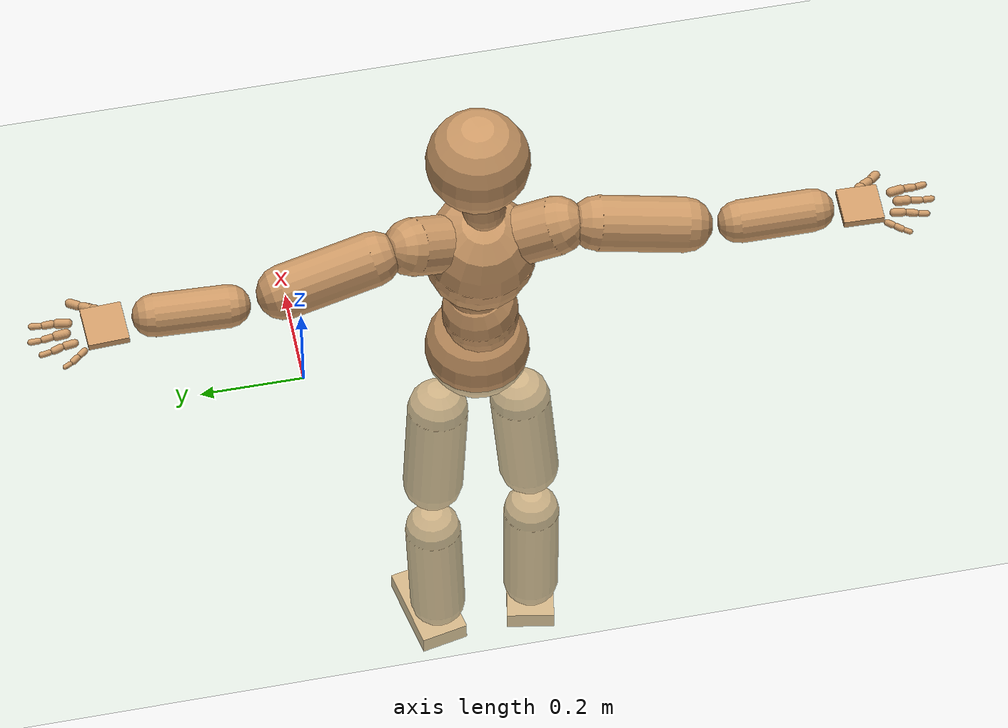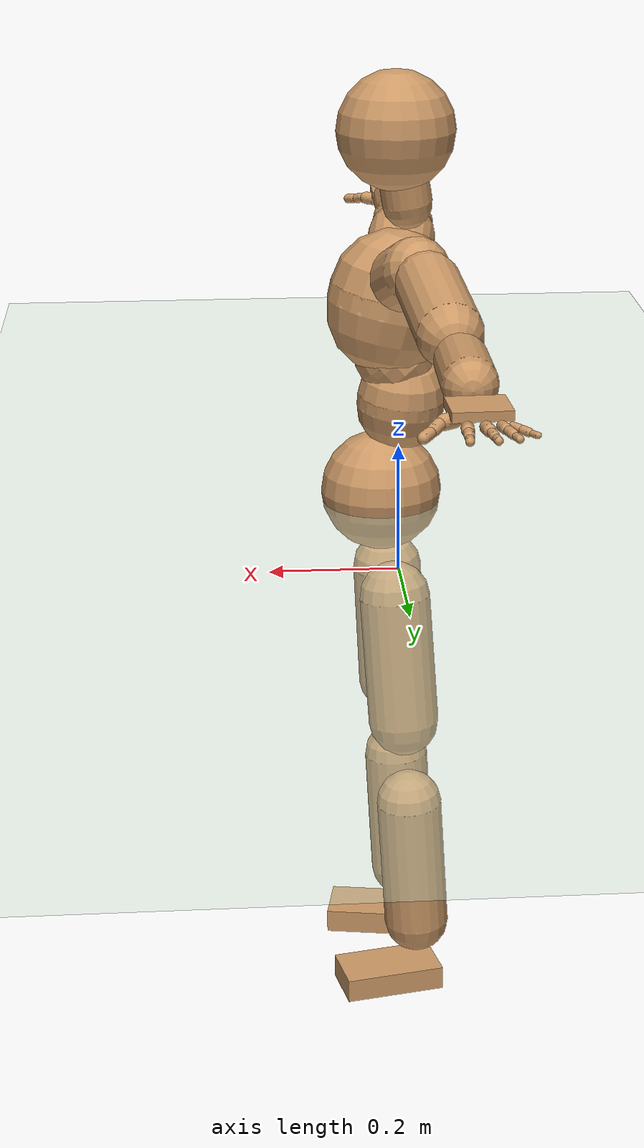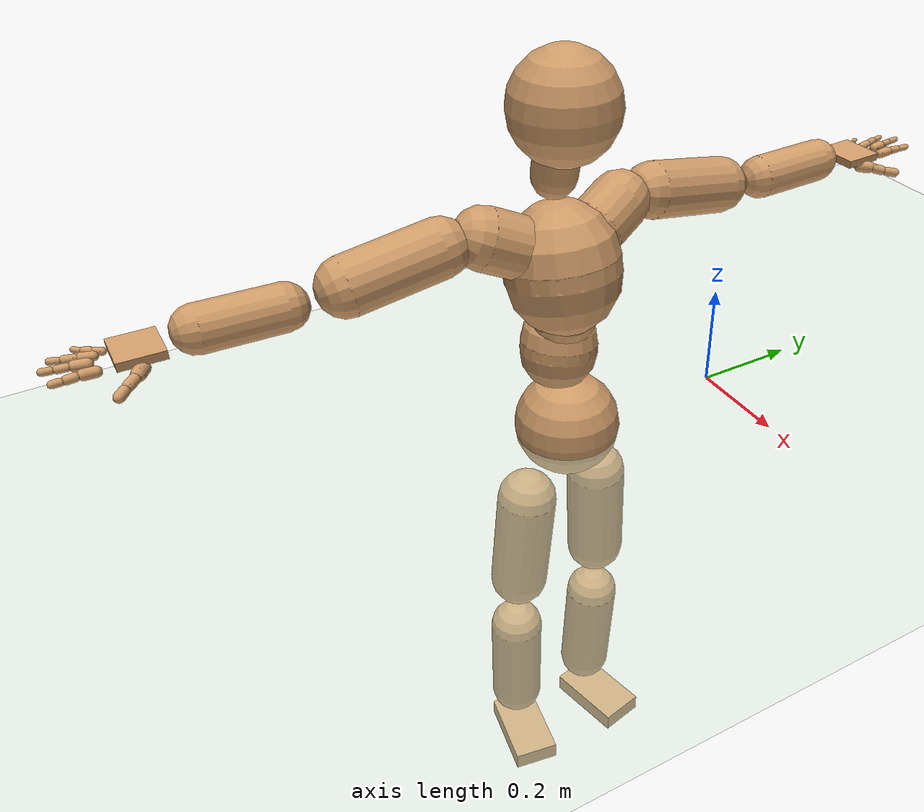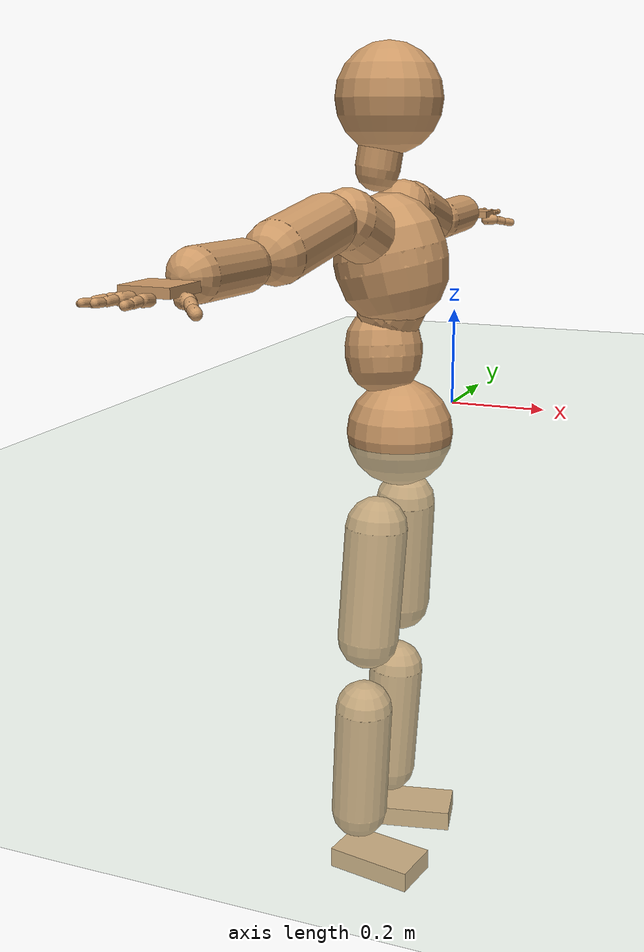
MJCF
<mujoco model="humanoid">
  <compiler coordinate="local" angle="radian"/>
  <default>
    <joint damping="0.0" armature="0.01" stiffness="0.0" limited="true"/>
    <geom conaffinity="1" condim="3" contype="7" margin="0.001" rgba="0.8 0.6 .4 1"/>
  </default>
  <asset>
    <texture type="skybox" builtin="gradient" rgb1=".4 .5 .6" rgb2="0 0 0" width="100" height="100"/>
    <texture builtin="flat" height="1278" mark="cross" markrgb="1 1 1" name="texgeom" random="0.01" rgb1="0.8 0.6 0.4" rgb2="0.8 0.6 0.4" type="cube" width="127"/>
    <texture builtin="checker" height="100" name="texplane" rgb1="0 0 0" rgb2="0.8 0.8 0.8" type="2d" width="100"/>
    <material name="MatPlane" reflectance="0.5" shininess="1" specular="1" texrepeat="60 60" texture="texplane"/>
    <material name="geom" texture="texgeom" texuniform="true"/>
  </asset>
  <worldbody>
    <light cutoff="100" diffuse="1 1 1" dir="-0 0 -1.3" directional="true" exponent="1" pos="0 0 1.3" specular=".1 .1 .1"/>
    <geom conaffinity="1" condim="3" name="floor" pos="0 0 0" rgba="0.8 0.9 0.8 1" size="100 100 .2" type="plane" material="MatPlane"/>
    <body name="Pelvis" pos="0.0005 -0.3383 0.0156">
      <freejoint name="Pelvis"/>
      <geom type="sphere" contype="1" conaffinity="1" density="500" size="0.1014" pos="0.0000 0.0000 0.0000" name="Pelvis"/>
      <body name="L_Hip" pos="-0.0118 0.0765 -0.0883">
        <joint name="L_Hip_x" type="hinge" pos="0 0 0" axis="1 0 0" stiffness="800" damping="80" armature="0.02" range="-180.0000 180.0000"/>
        <joint name="L_Hip_y" type="hinge" pos="0 0 0" axis="0 1 0" stiffness="800" damping="80" armature="0.02" range="-180.0000 180.0000"/>
        <joint name="L_Hip_z" type="hinge" pos="0 0 0" axis="0 0 1" stiffness="800" damping="80" armature="0.02" range="-180.0000 180.0000"/>
        <geom type="capsule" contype="1" conaffinity="1" density="500" fromto="-0.0048 0.0048 -0.0747 -0.0193 0.0190 -0.2989" size="0.0593" name="L_Hip"/>
        <body name="L_Knee" pos="-0.0242 0.0238 -0.3737">
          <joint name="L_Knee_x" type="hinge" pos="0 0 0" axis="1 0 0" stiffness="800" damping="80" armature="0.02" range="-180.0000 180.0000"/>
          <joint name="L_Knee_y" type="hinge" pos="0 0 0" axis="0 1 0" stiffness="800" damping="80" armature="0.02" range="-180.0000 180.0000"/>
          <joint name="L_Knee_z" type="hinge" pos="0 0 0" axis="0 0 1" stiffness="800" damping="80" armature="0.02" range="-180.0000 180.0000"/>
          <geom type="capsule" contype="1" conaffinity="1" density="500" fromto="-0.0048 -0.0018 -0.0780 -0.0191 -0.0071 -0.3118" size="0.0557" name="L_Knee"/>
          <body name="L_Ankle" pos="-0.0239 -0.0089 -0.3898">
            <joint name="L_Ankle_x" type="hinge" pos="0 0 0" axis="1 0 0" stiffness="800" damping="80" armature="0.02" range="-180.0000 180.0000"/>
            <joint name="L_Ankle_y" type="hinge" pos="0 0 0" axis="0 1 0" stiffness="800" damping="80" armature="0.02" range="-180.0000 180.0000"/>
            <joint name="L_Ankle_z" type="hinge" pos="0 0 0" axis="0 0 1" stiffness="800" damping="80" armature="0.02" range="-180.0000 180.0000"/>
            <geom type="box" contype="1" conaffinity="1" density="500" pos="0.0546 0.0112 -0.0215" size="0.086 0.0476 0.0203" quat="0.9949 0.0000 0.0000 0.1012" name="L_Ankle"/>
            <body name="L_Toe" pos="0.1093 0.0225 -0.0431">
              <joint name="L_Toe_x" type="hinge" pos="0 0 0" axis="1 0 0" stiffness="500" damping="50" armature="0.02" range="-180.0000 180.0000"/>
              <joint name="L_Toe_y" type="hinge" pos="0 0 0" axis="0 1 0" stiffness="500" damping="50" armature="0.02" range="-180.0000 180.0000"/>
              <joint name="L_Toe_z" type="hinge" pos="0 0 0" axis="0 0 1" stiffness="500" damping="50" armature="0.02" range="-180.0000 180.0000"/>
              <geom type="box" contype="1" conaffinity="1" density="500" pos="0.0000 0.0000 0.0216" size="0.0009 0.0023 0.001" quat="0.9942 0.0000 0.0000 0.1080" name="L_Toe"/>
            </body>
          </body>
        </body>
      </body>
      <body name="R_Hip" pos="-0.013 -0.0756 -0.0947">
        <joint name="R_Hip_x" type="hinge" pos="0 0 0" axis="1 0 0" stiffness="800" damping="80" armature="0.02" range="-180.0000 180.0000"/>
        <joint name="R_Hip_y" type="hinge" pos="0 0 0" axis="0 1 0" stiffness="800" damping="80" armature="0.02" range="-180.0000 180.0000"/>
        <joint name="R_Hip_z" type="hinge" pos="0 0 0" axis="0 0 1" stiffness="800" damping="80" armature="0.02" range="-180.0000 180.0000"/>
        <geom type="capsule" contype="1" conaffinity="1" density="500" fromto="-0.0036 -0.0055 -0.0739 -0.0145 -0.0222 -0.2957" size="0.0592" name="R_Hip"/>
        <body name="R_Knee" pos="-0.0181 -0.0277 -0.3696">
          <joint name="R_Knee_x" type="hinge" pos="0 0 0" axis="1 0 0" stiffness="800" damping="80" armature="0.02" range="-180.0000 180.0000"/>
          <joint name="R_Knee_y" type="hinge" pos="0 0 0" axis="0 1 0" stiffness="800" damping="80" armature="0.02" range="-180.0000 180.0000"/>
          <joint name="R_Knee_z" type="hinge" pos="0 0 0" axis="0 0 1" stiffness="800" damping="80" armature="0.02" range="-180.0000 180.0000"/>
          <geom type="capsule" contype="1" conaffinity="1" density="500" fromto="-0.0040 0.0008 -0.0762 -0.0162 0.0032 -0.3048" size="0.0557" name="R_Knee"/>
          <body name="R_Ankle" pos="-0.0202 0.0041 -0.381">
            <joint name="R_Ankle_x" type="hinge" pos="0 0 0" axis="1 0 0" stiffness="800" damping="80" armature="0.02" range="-180.0000 180.0000"/>
            <joint name="R_Ankle_y" type="hinge" pos="0 0 0" axis="0 1 0" stiffness="800" damping="80" armature="0.02" range="-180.0000 180.0000"/>
            <joint name="R_Ankle_z" type="hinge" pos="0 0 0" axis="0 0 1" stiffness="800" damping="80" armature="0.02" range="-180.0000 180.0000"/>
            <geom type="box" contype="1" conaffinity="1" density="500" pos="0.0516 -0.0091 -0.0233" size="0.086 0.0476 0.0203" quat="0.9962 0.0000 0.0000 -0.0871" name="R_Ankle"/>
            <body name="R_Toe" pos="0.1032 -0.0182 -0.0465">
              <joint name="R_Toe_x" type="hinge" pos="0 0 0" axis="1 0 0" stiffness="500" damping="50" armature="0.02" range="-180.0000 180.0000"/>
              <joint name="R_Toe_y" type="hinge" pos="0 0 0" axis="0 1 0" stiffness="500" damping="50" armature="0.02" range="-180.0000 180.0000"/>
              <joint name="R_Toe_z" type="hinge" pos="0 0 0" axis="0 0 1" stiffness="500" damping="50" armature="0.02" range="-180.0000 180.0000"/>
              <geom type="box" contype="1" conaffinity="1" density="500" pos="0.0000 0.0000 0.0233" size="0.0009 0.0023 0.001" quat="0.9971 0.0000 0.0000 -0.0762" name="R_Toe"/>
            </body>
          </body>
        </body>
      </body>
      <body name="Torso" pos="-0.0287 -0.0058 0.1019">
        <joint name="Torso_x" type="hinge" pos="0 0 0" axis="1 0 0" stiffness="1000" damping="100" armature="0.02" range="-180.0000 180.0000"/>
        <joint name="Torso_y" type="hinge" pos="0 0 0" axis="0 1 0" stiffness="1000" damping="100" armature="0.02" range="-180.0000 180.0000"/>
        <joint name="Torso_z" type="hinge" pos="0 0 0" axis="0 0 1" stiffness="1000" damping="100" armature="0.02" range="-180.0000 180.0000"/>
        <geom type="capsule" contype="1" conaffinity="1" density="500" fromto="-0.0052 0.0075 0.0641 -0.0034 0.0050 0.0427" size="0.0731" name="Torso"/>
        <body name="Spine" pos="-0.0086 0.0125 0.1068">
          <joint name="Spine_x" type="hinge" pos="0 0 0" axis="1 0 0" stiffness="1000" damping="100" armature="0.02" range="-180.0000 180.0000"/>
          <joint name="Spine_y" type="hinge" pos="0 0 0" axis="0 1 0" stiffness="1000" damping="100" armature="0.02" range="-180.0000 180.0000"/>
          <joint name="Spine_z" type="hinge" pos="0 0 0" axis="0 0 1" stiffness="1000" damping="100" armature="0.02" range="-180.0000 180.0000"/>
          <geom type="capsule" contype="1" conaffinity="1" density="500" fromto="0.0211 -0.0044 0.0257 0.0140 -0.0029 0.0171" size="0.062" name="Spine"/>
          <body name="Chest" pos="0.0351 -0.0073 0.0428">
            <joint name="Chest_x" type="hinge" pos="0 0 0" axis="1 0 0" stiffness="1000" damping="100" armature="0.02" range="-180.0000 180.0000"/>
            <joint name="Chest_y" type="hinge" pos="0 0 0" axis="0 1 0" stiffness="1000" damping="100" armature="0.02" range="-180.0000 180.0000"/>
            <joint name="Chest_z" type="hinge" pos="0 0 0" axis="0 0 1" stiffness="1000" damping="100" armature="0.02" range="-180.0000 180.0000"/>
            <geom type="capsule" contype="1" conaffinity="1" density="500" fromto="-0.0190 -0.0018 0.0875 -0.0127 -0.0012 0.0584" size="0.1061" name="Chest"/>
            <body name="Neck" pos="-0.0457 -0.0061 0.2042">
              <joint name="Neck_x" type="hinge" pos="0 0 0" axis="1 0 0" stiffness="500" damping="50" armature="0.02" range="-180.0000 180.0000"/>
              <joint name="Neck_y" type="hinge" pos="0 0 0" axis="0 1 0" stiffness="500" damping="50" armature="0.02" range="-180.0000 180.0000"/>
              <joint name="Neck_z" type="hinge" pos="0 0 0" axis="0 0 1" stiffness="500" damping="50" armature="0.02" range="-180.0000 180.0000"/>
              <geom type="capsule" contype="1" conaffinity="1" density="500" fromto="0.0048 0.0018 0.0301 0.0192 0.0072 0.1206" size="0.0411" name="Neck"/>
              <body name="Head" pos="0.024 0.009 0.1507">
                <joint name="Head_x" type="hinge" pos="0 0 0" axis="1 0 0" stiffness="500" damping="50" armature="0.02" range="-180.0000 180.0000"/>
                <joint name="Head_y" type="hinge" pos="0 0 0" axis="0 1 0" stiffness="500" damping="50" armature="0.02" range="-180.0000 180.0000"/>
                <joint name="Head_z" type="hinge" pos="0 0 0" axis="0 0 1" stiffness="500" damping="50" armature="0.02" range="-180.0000 180.0000"/>
                <geom type="sphere" contype="1" conaffinity="1" density="500" size="0.0974" pos="0.0000 0.0000 0.0000" name="Head"/>
              </body>
            </body>
            <body name="L_Thorax" pos="-0.0212 0.0553 0.119">
              <joint name="L_Thorax_x" type="hinge" pos="0 0 0" axis="1 0 0" stiffness="500" damping="50" armature="0.02" range="-180.0000 180.0000"/>
              <joint name="L_Thorax_y" type="hinge" pos="0 0 0" axis="0 1 0" stiffness="500" damping="50" armature="0.02" range="-180.0000 180.0000"/>
              <joint name="L_Thorax_z" type="hinge" pos="0 0 0" axis="0 0 1" stiffness="500" damping="50" armature="0.02" range="-180.0000 180.0000"/>
              <geom type="capsule" contype="1" conaffinity="1" density="500" fromto="-0.0055 0.0191 0.0091 -0.0219 0.0764 0.0362" size="0.0551" name="L_Thorax"/>
              <body name="L_Shoulder" pos="-0.0273 0.0955 0.0453">
                <joint name="L_Shoulder_x" type="hinge" pos="0 0 0" axis="1 0 0" stiffness="500" damping="50" armature="0.02" range="-180.0000 180.0000"/>
                <joint name="L_Shoulder_y" type="hinge" pos="0 0 0" axis="0 1 0" stiffness="500" damping="50" armature="0.02" range="-180.0000 180.0000"/>
                <joint name="L_Shoulder_z" type="hinge" pos="0 0 0" axis="0 0 1" stiffness="500" damping="50" armature="0.02" range="-180.0000 180.0000"/>
                <geom type="capsule" contype="1" conaffinity="1" density="500" fromto="-0.0057 0.0570 -0.0116 -0.0227 0.2280 -0.0463" size="0.0521" name="L_Shoulder"/>
                <body name="L_Elbow" pos="-0.0283 0.285 -0.0579">
                  <joint name="L_Elbow_x" type="hinge" pos="0 0 0" axis="1 0 0" stiffness="500" damping="50" armature="0.02" range="-720.0000 720.0000"/>
                  <joint name="L_Elbow_y" type="hinge" pos="0 0 0" axis="0 1 0" stiffness="500" damping="50" armature="0.02" range="-720.0000 720.0000"/>
                  <joint name="L_Elbow_z" type="hinge" pos="0 0 0" axis="0 0 1" stiffness="500" damping="50" armature="0.02" range="-720.0000 720.0000"/>
                  <geom type="capsule" contype="1" conaffinity="1" density="500" fromto="0.0009 0.0469 0.0016 0.0037 0.1877 0.0064" size="0.0405" name="L_Elbow"/>
                  <body name="L_Wrist" pos="0.0047 0.2347 0.008">
                    <joint name="L_Wrist_x" type="hinge" pos="0 0 0" axis="1 0 0" stiffness="300" damping="30" armature="0.02" range="-180.0000 180.0000"/>
                    <joint name="L_Wrist_y" type="hinge" pos="0 0 0" axis="0 1 0" stiffness="300" damping="30" armature="0.02" range="-180.0000 180.0000"/>
                    <joint name="L_Wrist_z" type="hinge" pos="0 0 0" axis="0 0 1" stiffness="300" damping="30" armature="0.02" range="-180.0000 180.0000"/>
                    <geom type="box" contype="1" conaffinity="1" density="500" pos="-0.0021 0.0444 -0.0086" size="0.0384 0.0425 0.0073" quat="0.7232 0.0000 0.0000 -0.6906" name="L_Wrist"/>
                    <body name="L_Index1" pos="0.0203 0.1041 -0.0147">
                      <joint name="L_Index1_x" type="hinge" pos="0 0 0" axis="1 0 0" stiffness="100" damping="10" armature="0.02" range="-180.0000 180.0000"/>
                      <joint name="L_Index1_y" type="hinge" pos="0 0 0" axis="0 1 0" stiffness="100" damping="10" armature="0.02" range="-180.0000 180.0000"/>
                      <joint name="L_Index1_z" type="hinge" pos="0 0 0" axis="0 0 1" stiffness="100" damping="10" armature="0.02" range="-180.0000 180.0000"/>
                      <geom type="capsule" contype="1" conaffinity="1" density="500" fromto="0.0005 0.0063 0.0006 0.0020 0.0251 0.0024" size="0.009" name="L_Index1"/>
                      <body name="L_Index2" pos="0.0025 0.0314 0.003">
                        <joint name="L_Index2_x" type="hinge" pos="0 0 0" axis="1 0 0" stiffness="100" damping="10" armature="0.02" range="-180.0000 180.0000"/>
                        <joint name="L_Index2_y" type="hinge" pos="0 0 0" axis="0 1 0" stiffness="100" damping="10" armature="0.02" range="-180.0000 180.0000"/>
                        <joint name="L_Index2_z" type="hinge" pos="0 0 0" axis="0 0 1" stiffness="100" damping="10" armature="0.02" range="-180.0000 180.0000"/>
                        <geom type="capsule" contype="1" conaffinity="1" density="500" fromto="0.0001 0.0044 -0.0003 0.0002 0.0177 -0.0010" size="0.0074" name="L_Index2"/>
                        <body name="L_Index3" pos="0.0003 0.0222 -0.0013">
                          <joint name="L_Index3_x" type="hinge" pos="0 0 0" axis="1 0 0" stiffness="100" damping="10" armature="0.02" range="-180.0000 180.0000"/>
                          <joint name="L_Index3_y" type="hinge" pos="0 0 0" axis="0 1 0" stiffness="100" damping="10" armature="0.02" range="-180.0000 180.0000"/>
                          <joint name="L_Index3_z" type="hinge" pos="0 0 0" axis="0 0 1" stiffness="100" damping="10" armature="0.02" range="-180.0000 180.0000"/>
                          <geom type="capsule" contype="1" conaffinity="1" density="500" fromto="0.0005 0.0048 0.0001 0.0018 0.0193 0.0006" size="0.0062" name="L_Index3"/>
                        </body>
                      </body>
                    </body>
                    <body name="L_Middle1" pos="-0.0026 0.1111 -0.0123">
                      <joint name="L_Middle1_x" type="hinge" pos="0 0 0" axis="1 0 0" stiffness="100" damping="10" armature="0.02" range="-180.0000 180.0000"/>
                      <joint name="L_Middle1_y" type="hinge" pos="0 0 0" axis="0 1 0" stiffness="100" damping="10" armature="0.02" range="-180.0000 180.0000"/>
                      <joint name="L_Middle1_z" type="hinge" pos="0 0 0" axis="0 0 1" stiffness="100" damping="10" armature="0.02" range="-180.0000 180.0000"/>
                      <geom type="capsule" contype="1" conaffinity="1" density="500" fromto="-0.0008 0.0059 0.0003 -0.0032 0.0238 0.0013" size="0.0092" name="L_Middle1"/>
                      <body name="L_Middle2" pos="-0.004 0.0297 0.0016">
                        <joint name="L_Middle2_x" type="hinge" pos="0 0 0" axis="1 0 0" stiffness="100" damping="10" armature="0.02" range="-180.0000 180.0000"/>
                        <joint name="L_Middle2_y" type="hinge" pos="0 0 0" axis="0 1 0" stiffness="100" damping="10" armature="0.02" range="-180.0000 180.0000"/>
                        <joint name="L_Middle2_z" type="hinge" pos="0 0 0" axis="0 0 1" stiffness="100" damping="10" armature="0.02" range="-180.0000 180.0000"/>
                        <geom type="capsule" contype="1" conaffinity="1" density="500" fromto="-0.0008 0.0046 -0.0001 -0.0030 0.0184 -0.0005" size="0.0068" name="L_Middle2"/>
                        <body name="L_Middle3" pos="-0.0038 0.023 -0.0006">
                          <joint name="L_Middle3_x" type="hinge" pos="0 0 0" axis="1 0 0" stiffness="100" damping="10" armature="0.02" range="-180.0000 180.0000"/>
                          <joint name="L_Middle3_y" type="hinge" pos="0 0 0" axis="0 1 0" stiffness="100" damping="10" armature="0.02" range="-180.0000 180.0000"/>
                          <joint name="L_Middle3_z" type="hinge" pos="0 0 0" axis="0 0 1" stiffness="100" damping="10" armature="0.02" range="-180.0000 180.0000"/>
                          <geom type="capsule" contype="1" conaffinity="1" density="500" fromto="-0.0004 0.0050 0.0003 -0.0014 0.0200 0.0011" size="0.0059" name="L_Middle3"/>
                        </body>
                      </body>
                    </body>
                    <body name="L_Pinky1" pos="-0.0403 0.0861 -0.0206">
                      <joint name="L_Pinky1_x" type="hinge" pos="0 0 0" axis="1 0 0" stiffness="100" damping="10" armature="0.02" range="-180.0000 180.0000"/>
                      <joint name="L_Pinky1_y" type="hinge" pos="0 0 0" axis="0 1 0" stiffness="100" damping="10" armature="0.02" range="-180.0000 180.0000"/>
                      <joint name="L_Pinky1_z" type="hinge" pos="0 0 0" axis="0 0 1" stiffness="100" damping="10" armature="0.02" range="-180.0000 180.0000"/>
                      <geom type="capsule" contype="1" conaffinity="1" density="500" fromto="-0.0024 0.0029 -0.0001 -0.0094 0.0118 -0.0004" size="0.0065" name="L_Pinky1"/>
                      <body name="L_Pinky2" pos="-0.0118 0.0147 -0.0005">
                        <joint name="L_Pinky2_x" type="hinge" pos="0 0 0" axis="1 0 0" stiffness="100" damping="10" armature="0.02" range="-180.0000 180.0000"/>
                        <joint name="L_Pinky2_y" type="hinge" pos="0 0 0" axis="0 1 0" stiffness="100" damping="10" armature="0.02" range="-180.0000 180.0000"/>
                        <joint name="L_Pinky2_z" type="hinge" pos="0 0 0" axis="0 0 1" stiffness="100" damping="10" armature="0.02" range="-180.0000 180.0000"/>
                        <geom type="capsule" contype="1" conaffinity="1" density="500" fromto="-0.0023 0.0030 -0.0002 -0.0092 0.0119 -0.0008" size="0.0063" name="L_Pinky2"/>
                        <body name="L_Pinky3" pos="-0.0114 0.0148 -0.001">
                          <joint name="L_Pinky3_x" type="hinge" pos="0 0 0" axis="1 0 0" stiffness="100" damping="10" armature="0.02" range="-180.0000 180.0000"/>
                          <joint name="L_Pinky3_y" type="hinge" pos="0 0 0" axis="0 1 0" stiffness="100" damping="10" armature="0.02" range="-180.0000 180.0000"/>
                          <joint name="L_Pinky3_z" type="hinge" pos="0 0 0" axis="0 0 1" stiffness="100" damping="10" armature="0.02" range="-180.0000 180.0000"/>
                          <geom type="capsule" contype="1" conaffinity="1" density="500" fromto="-0.0019 0.0034 0.0002 -0.0076 0.0135 0.0008" size="0.0048" name="L_Pinky3"/>
                        </body>
                      </body>
                    </body>
                    <body name="L_Ring1" pos="-0.025 0.0993 -0.0152">
                      <joint name="L_Ring1_x" type="hinge" pos="0 0 0" axis="1 0 0" stiffness="100" damping="10" armature="0.02" range="-180.0000 180.0000"/>
                      <joint name="L_Ring1_y" type="hinge" pos="0 0 0" axis="0 1 0" stiffness="100" damping="10" armature="0.02" range="-180.0000 180.0000"/>
                      <joint name="L_Ring1_z" type="hinge" pos="0 0 0" axis="0 0 1" stiffness="100" damping="10" armature="0.02" range="-180.0000 180.0000"/>
                      <geom type="capsule" contype="1" conaffinity="1" density="500" fromto="-0.0011 0.0054 0.0004 -0.0043 0.0218 0.0015" size="0.0079" name="L_Ring1"/>
                      <body name="L_Ring2" pos="-0.0054 0.0272 0.0019">
                        <joint name="L_Ring2_x" type="hinge" pos="0 0 0" axis="1 0 0" stiffness="100" damping="10" armature="0.02" range="-180.0000 180.0000"/>
                        <joint name="L_Ring2_y" type="hinge" pos="0 0 0" axis="0 1 0" stiffness="100" damping="10" armature="0.02" range="-180.0000 180.0000"/>
                        <joint name="L_Ring2_z" type="hinge" pos="0 0 0" axis="0 0 1" stiffness="100" damping="10" armature="0.02" range="-180.0000 180.0000"/>
                        <geom type="capsule" contype="1" conaffinity="1" density="500" fromto="-0.0014 0.0044 -0.0002 -0.0056 0.0177 -0.0008" size="0.0072" name="L_Ring2"/>
                        <body name="L_Ring3" pos="-0.0071 0.0222 -0.001">
                          <joint name="L_Ring3_x" type="hinge" pos="0 0 0" axis="1 0 0" stiffness="100" damping="10" armature="0.02" range="-180.0000 180.0000"/>
                          <joint name="L_Ring3_y" type="hinge" pos="0 0 0" axis="0 1 0" stiffness="100" damping="10" armature="0.02" range="-180.0000 180.0000"/>
                          <joint name="L_Ring3_z" type="hinge" pos="0 0 0" axis="0 0 1" stiffness="100" damping="10" armature="0.02" range="-180.0000 180.0000"/>
                          <geom type="capsule" contype="1" conaffinity="1" density="500" fromto="-0.0010 0.0048 0.0002 -0.0040 0.0193 0.0008" size="0.0056" name="L_Ring3"/>
                        </body>
                      </body>
                    </body>
                    <body name="L_Thumb1" pos="0.0271 0.0438 -0.0227">
                      <joint name="L_Thumb1_x" type="hinge" pos="0 0 0" axis="1 0 0" stiffness="100" damping="10" armature="0.02" range="-180.0000 180.0000"/>
                      <joint name="L_Thumb1_y" type="hinge" pos="0 0 0" axis="0 1 0" stiffness="100" damping="10" armature="0.02" range="-180.0000 180.0000"/>
                      <joint name="L_Thumb1_z" type="hinge" pos="0 0 0" axis="0 0 1" stiffness="100" damping="10" armature="0.02" range="-180.0000 180.0000"/>
                      <geom type="capsule" contype="1" conaffinity="1" density="500" fromto="0.0047 0.0034 0.0001 0.0189 0.0137 0.0005" size="0.0117" name="L_Thumb1"/>
                      <body name="L_Thumb2" pos="0.0236 0.0171 0.0006">
                        <joint name="L_Thumb2_x" type="hinge" pos="0 0 0" axis="1 0 0" stiffness="100" damping="10" armature="0.02" range="-180.0000 180.0000"/>
                        <joint name="L_Thumb2_y" type="hinge" pos="0 0 0" axis="0 1 0" stiffness="100" damping="10" armature="0.02" range="-180.0000 180.0000"/>
                        <joint name="L_Thumb2_z" type="hinge" pos="0 0 0" axis="0 0 1" stiffness="100" damping="10" armature="0.02" range="-180.0000 180.0000"/>
                        <geom type="capsule" contype="1" conaffinity="1" density="500" fromto="0.0029 0.0040 -0.0012 0.0114 0.0161 -0.0047" size="0.0092" name="L_Thumb2"/>
                        <body name="L_Thumb3" pos="0.0143 0.0201 -0.0059">
                          <joint name="L_Thumb3_x" type="hinge" pos="0 0 0" axis="1 0 0" stiffness="100" damping="10" armature="0.02" range="-180.0000 180.0000"/>
                          <joint name="L_Thumb3_y" type="hinge" pos="0 0 0" axis="0 1 0" stiffness="100" damping="10" armature="0.02" range="-180.0000 180.0000"/>
                          <joint name="L_Thumb3_z" type="hinge" pos="0 0 0" axis="0 0 1" stiffness="100" damping="10" armature="0.02" range="-180.0000 180.0000"/>
                          <geom type="capsule" contype="1" conaffinity="1" density="500" fromto="0.0033 0.0044 -0.0008 0.0130 0.0177 -0.0031" size="0.0087" name="L_Thumb3"/>
                        </body>
                      </body>
                    </body>
                  </body>
                </body>
              </body>
            </body>
            <body name="R_Thorax" pos="-0.0283 -0.058 0.1145">
              <joint name="R_Thorax_x" type="hinge" pos="0 0 0" axis="1 0 0" stiffness="500" damping="50" armature="0.02" range="-180.0000 180.0000"/>
              <joint name="R_Thorax_y" type="hinge" pos="0 0 0" axis="0 1 0" stiffness="500" damping="50" armature="0.02" range="-180.0000 180.0000"/>
              <joint name="R_Thorax_z" type="hinge" pos="0 0 0" axis="0 0 1" stiffness="500" damping="50" armature="0.02" range="-180.0000 180.0000"/>
              <geom type="capsule" contype="1" conaffinity="1" density="500" fromto="-0.0039 -0.0207 0.0093 -0.0156 -0.0828 0.0372" size="0.0563" name="R_Thorax"/>
              <body name="R_Shoulder" pos="-0.0195 -0.1035 0.0466">
                <joint name="R_Shoulder_x" type="hinge" pos="0 0 0" axis="1 0 0" stiffness="500" damping="50" armature="0.02" range="-180.0000 180.0000"/>
                <joint name="R_Shoulder_y" type="hinge" pos="0 0 0" axis="0 1 0" stiffness="500" damping="50" armature="0.02" range="-180.0000 180.0000"/>
                <joint name="R_Shoulder_z" type="hinge" pos="0 0 0" axis="0 0 1" stiffness="500" damping="50" armature="0.02" range="-180.0000 180.0000"/>
                <geom type="capsule" contype="1" conaffinity="1" density="500" fromto="-0.0043 -0.0550 -0.0103 -0.0171 -0.2198 -0.0410" size="0.0525" name="R_Shoulder"/>
                <body name="R_Elbow" pos="-0.0214 -0.2748 -0.0513">
                  <joint name="R_Elbow_x" type="hinge" pos="0 0 0" axis="1 0 0" stiffness="500" damping="50" armature="0.02" range="-720.0000 720.0000"/>
                  <joint name="R_Elbow_y" type="hinge" pos="0 0 0" axis="0 1 0" stiffness="500" damping="50" armature="0.02" range="-720.0000 720.0000"/>
                  <joint name="R_Elbow_z" type="hinge" pos="0 0 0" axis="0 0 1" stiffness="500" damping="50" armature="0.02" range="-720.0000 720.0000"/>
                  <geom type="capsule" contype="1" conaffinity="1" density="500" fromto="-0.0009 -0.0470 0.0007 -0.0037 -0.1882 0.0030" size="0.0407" name="R_Elbow"/>
                  <body name="R_Wrist" pos="-0.0046 -0.2352 0.0037">
                    <joint name="R_Wrist_x" type="hinge" pos="0 0 0" axis="1 0 0" stiffness="300" damping="30" armature="0.02" range="-180.0000 180.0000"/>
                    <joint name="R_Wrist_y" type="hinge" pos="0 0 0" axis="0 1 0" stiffness="300" damping="30" armature="0.02" range="-180.0000 180.0000"/>
                    <joint name="R_Wrist_z" type="hinge" pos="0 0 0" axis="0 0 1" stiffness="300" damping="30" armature="0.02" range="-180.0000 180.0000"/>
                    <geom type="box" contype="1" conaffinity="1" density="500" pos="-0.0013 -0.0438 -0.0081" size="0.0384 0.0395 0.0075" quat="0.7172 0.0000 0.0000 0.6969" name="R_Wrist"/>
                    <body name="R_Index1" pos="0.0219 -0.1027 -0.0139">
                      <joint name="R_Index1_x" type="hinge" pos="0 0 0" axis="1 0 0" stiffness="100" damping="10" armature="0.02" range="-180.0000 180.0000"/>
                      <joint name="R_Index1_y" type="hinge" pos="0 0 0" axis="0 1 0" stiffness="100" damping="10" armature="0.02" range="-180.0000 180.0000"/>
                      <joint name="R_Index1_z" type="hinge" pos="0 0 0" axis="0 0 1" stiffness="100" damping="10" armature="0.02" range="-180.0000 180.0000"/>
                      <geom type="capsule" contype="1" conaffinity="1" density="500" fromto="0.0005 -0.0063 0.0006 0.0020 -0.0251 0.0024" size="0.009" name="R_Index1"/>
                      <body name="R_Index2" pos="0.0025 -0.0314 0.003">
                        <joint name="R_Index2_x" type="hinge" pos="0 0 0" axis="1 0 0" stiffness="100" damping="10" armature="0.02" range="-180.0000 180.0000"/>
                        <joint name="R_Index2_y" type="hinge" pos="0 0 0" axis="0 1 0" stiffness="100" damping="10" armature="0.02" range="-180.0000 180.0000"/>
                        <joint name="R_Index2_z" type="hinge" pos="0 0 0" axis="0 0 1" stiffness="100" damping="10" armature="0.02" range="-180.0000 180.0000"/>
                        <geom type="capsule" contype="1" conaffinity="1" density="500" fromto="0.0001 -0.0044 -0.0003 0.0002 -0.0177 -0.0010" size="0.0074" name="R_Index2"/>
                        <body name="R_Index3" pos="0.0003 -0.0222 -0.0013">
                          <joint name="R_Index3_x" type="hinge" pos="0 0 0" axis="1 0 0" stiffness="100" damping="10" armature="0.02" range="-180.0000 180.0000"/>
                          <joint name="R_Index3_y" type="hinge" pos="0 0 0" axis="0 1 0" stiffness="100" damping="10" armature="0.02" range="-180.0000 180.0000"/>
                          <joint name="R_Index3_z" type="hinge" pos="0 0 0" axis="0 0 1" stiffness="100" damping="10" armature="0.02" range="-180.0000 180.0000"/>
                          <geom type="capsule" contype="1" conaffinity="1" density="500" fromto="0.0005 -0.0040 0.0001 0.0018 -0.0161 0.0006" size="0.0065" name="R_Index3"/>
                        </body>
                      </body>
                    </body>
                    <body name="R_Middle1" pos="-0.001 -0.1098 -0.0114">
                      <joint name="R_Middle1_x" type="hinge" pos="0 0 0" axis="1 0 0" stiffness="100" damping="10" armature="0.02" range="-180.0000 180.0000"/>
                      <joint name="R_Middle1_y" type="hinge" pos="0 0 0" axis="0 1 0" stiffness="100" damping="10" armature="0.02" range="-180.0000 180.0000"/>
                      <joint name="R_Middle1_z" type="hinge" pos="0 0 0" axis="0 0 1" stiffness="100" damping="10" armature="0.02" range="-180.0000 180.0000"/>
                      <geom type="capsule" contype="1" conaffinity="1" density="500" fromto="-0.0008 -0.0059 0.0003 -0.0032 -0.0238 0.0013" size="0.0092" name="R_Middle1"/>
                      <body name="R_Middle2" pos="-0.004 -0.0297 0.0016">
                        <joint name="R_Middle2_x" type="hinge" pos="0 0 0" axis="1 0 0" stiffness="100" damping="10" armature="0.02" range="-180.0000 180.0000"/>
                        <joint name="R_Middle2_y" type="hinge" pos="0 0 0" axis="0 1 0" stiffness="100" damping="10" armature="0.02" range="-180.0000 180.0000"/>
                        <joint name="R_Middle2_z" type="hinge" pos="0 0 0" axis="0 0 1" stiffness="100" damping="10" armature="0.02" range="-180.0000 180.0000"/>
                        <geom type="capsule" contype="1" conaffinity="1" density="500" fromto="-0.0008 -0.0046 -0.0001 -0.0030 -0.0184 -0.0005" size="0.0068" name="R_Middle2"/>
                        <body name="R_Middle3" pos="-0.0038 -0.023 -0.0006">
                          <joint name="R_Middle3_x" type="hinge" pos="0 0 0" axis="1 0 0" stiffness="100" damping="10" armature="0.02" range="-180.0000 180.0000"/>
                          <joint name="R_Middle3_y" type="hinge" pos="0 0 0" axis="0 1 0" stiffness="100" damping="10" armature="0.02" range="-180.0000 180.0000"/>
                          <joint name="R_Middle3_z" type="hinge" pos="0 0 0" axis="0 0 1" stiffness="100" damping="10" armature="0.02" range="-180.0000 180.0000"/>
                          <geom type="capsule" contype="1" conaffinity="1" density="500" fromto="-0.0004 -0.0042 0.0003 -0.0014 -0.0168 0.0011" size="0.0062" name="R_Middle3"/>
                        </body>
                      </body>
                    </body>
                    <body name="R_Pinky1" pos="-0.0387 -0.0848 -0.0198">
                      <joint name="R_Pinky1_x" type="hinge" pos="0 0 0" axis="1 0 0" stiffness="100" damping="10" armature="0.02" range="-180.0000 180.0000"/>
                      <joint name="R_Pinky1_y" type="hinge" pos="0 0 0" axis="0 1 0" stiffness="100" damping="10" armature="0.02" range="-180.0000 180.0000"/>
                      <joint name="R_Pinky1_z" type="hinge" pos="0 0 0" axis="0 0 1" stiffness="100" damping="10" armature="0.02" range="-180.0000 180.0000"/>
                      <geom type="capsule" contype="1" conaffinity="1" density="500" fromto="-0.0024 -0.0029 -0.0001 -0.0094 -0.0118 -0.0004" size="0.0065" name="R_Pinky1"/>
                      <body name="R_Pinky2" pos="-0.0118 -0.0147 -0.0005">
                        <joint name="R_Pinky2_x" type="hinge" pos="0 0 0" axis="1 0 0" stiffness="100" damping="10" armature="0.02" range="-180.0000 180.0000"/>
                        <joint name="R_Pinky2_y" type="hinge" pos="0 0 0" axis="0 1 0" stiffness="100" damping="10" armature="0.02" range="-180.0000 180.0000"/>
                        <joint name="R_Pinky2_z" type="hinge" pos="0 0 0" axis="0 0 1" stiffness="100" damping="10" armature="0.02" range="-180.0000 180.0000"/>
                        <geom type="capsule" contype="1" conaffinity="1" density="500" fromto="-0.0023 -0.0030 -0.0002 -0.0092 -0.0119 -0.0008" size="0.0063" name="R_Pinky2"/>
                        <body name="R_Pinky3" pos="-0.0114 -0.0148 -0.001">
                          <joint name="R_Pinky3_x" type="hinge" pos="0 0 0" axis="1 0 0" stiffness="100" damping="10" armature="0.02" range="-180.0000 180.0000"/>
                          <joint name="R_Pinky3_y" type="hinge" pos="0 0 0" axis="0 1 0" stiffness="100" damping="10" armature="0.02" range="-180.0000 180.0000"/>
                          <joint name="R_Pinky3_z" type="hinge" pos="0 0 0" axis="0 0 1" stiffness="100" damping="10" armature="0.02" range="-180.0000 180.0000"/>
                          <geom type="capsule" contype="1" conaffinity="1" density="500" fromto="-0.0019 -0.0026 0.0002 -0.0076 -0.0103 0.0008" size="0.0051" name="R_Pinky3"/>
                        </body>
                      </body>
                    </body>
                    <body name="R_Ring1" pos="-0.0234 -0.098 -0.0144">
                      <joint name="R_Ring1_x" type="hinge" pos="0 0 0" axis="1 0 0" stiffness="100" damping="10" armature="0.02" range="-180.0000 180.0000"/>
                      <joint name="R_Ring1_y" type="hinge" pos="0 0 0" axis="0 1 0" stiffness="100" damping="10" armature="0.02" range="-180.0000 180.0000"/>
                      <joint name="R_Ring1_z" type="hinge" pos="0 0 0" axis="0 0 1" stiffness="100" damping="10" armature="0.02" range="-180.0000 180.0000"/>
                      <geom type="capsule" contype="1" conaffinity="1" density="500" fromto="-0.0011 -0.0054 0.0004 -0.0043 -0.0218 0.0015" size="0.0079" name="R_Ring1"/>
                      <body name="R_Ring2" pos="-0.0054 -0.0272 0.0019">
                        <joint name="R_Ring2_x" type="hinge" pos="0 0 0" axis="1 0 0" stiffness="100" damping="10" armature="0.02" range="-180.0000 180.0000"/>
                        <joint name="R_Ring2_y" type="hinge" pos="0 0 0" axis="0 1 0" stiffness="100" damping="10" armature="0.02" range="-180.0000 180.0000"/>
                        <joint name="R_Ring2_z" type="hinge" pos="0 0 0" axis="0 0 1" stiffness="100" damping="10" armature="0.02" range="-180.0000 180.0000"/>
                        <geom type="capsule" contype="1" conaffinity="1" density="500" fromto="-0.0014 -0.0044 -0.0002 -0.0056 -0.0177 -0.0008" size="0.0072" name="R_Ring2"/>
                        <body name="R_Ring3" pos="-0.0071 -0.0222 -0.001">
                          <joint name="R_Ring3_x" type="hinge" pos="0 0 0" axis="1 0 0" stiffness="100" damping="10" armature="0.02" range="-180.0000 180.0000"/>
                          <joint name="R_Ring3_y" type="hinge" pos="0 0 0" axis="0 1 0" stiffness="100" damping="10" armature="0.02" range="-180.0000 180.0000"/>
                          <joint name="R_Ring3_z" type="hinge" pos="0 0 0" axis="0 0 1" stiffness="100" damping="10" armature="0.02" range="-180.0000 180.0000"/>
                          <geom type="capsule" contype="1" conaffinity="1" density="500" fromto="-0.0010 -0.0040 0.0002 -0.0040 -0.0161 0.0008" size="0.0059" name="R_Ring3"/>
                        </body>
                      </body>
                    </body>
                    <body name="R_Thumb1" pos="0.0286 -0.0425 -0.0218">
                      <joint name="R_Thumb1_x" type="hinge" pos="0 0 0" axis="1 0 0" stiffness="100" damping="10" armature="0.02" range="-180.0000 180.0000"/>
                      <joint name="R_Thumb1_y" type="hinge" pos="0 0 0" axis="0 1 0" stiffness="100" damping="10" armature="0.02" range="-180.0000 180.0000"/>
                      <joint name="R_Thumb1_z" type="hinge" pos="0 0 0" axis="0 0 1" stiffness="100" damping="10" armature="0.02" range="-180.0000 180.0000"/>
                      <geom type="capsule" contype="1" conaffinity="1" density="500" fromto="0.0047 -0.0034 0.0001 0.0189 -0.0137 0.0005" size="0.0117" name="R_Thumb1"/>
                      <body name="R_Thumb2" pos="0.0236 -0.0171 0.0006">
                        <joint name="R_Thumb2_x" type="hinge" pos="0 0 0" axis="1 0 0" stiffness="100" damping="10" armature="0.02" range="-180.0000 180.0000"/>
                        <joint name="R_Thumb2_y" type="hinge" pos="0 0 0" axis="0 1 0" stiffness="100" damping="10" armature="0.02" range="-180.0000 180.0000"/>
                        <joint name="R_Thumb2_z" type="hinge" pos="0 0 0" axis="0 0 1" stiffness="100" damping="10" armature="0.02" range="-180.0000 180.0000"/>
                        <geom type="capsule" contype="1" conaffinity="1" density="500" fromto="0.0029 -0.0040 -0.0012 0.0114 -0.0161 -0.0047" size="0.0092" name="R_Thumb2"/>
                        <body name="R_Thumb3" pos="0.0143 -0.0201 -0.0059">
                          <joint name="R_Thumb3_x" type="hinge" pos="0 0 0" axis="1 0 0" stiffness="100" damping="10" armature="0.02" range="-180.0000 180.0000"/>
                          <joint name="R_Thumb3_y" type="hinge" pos="0 0 0" axis="0 1 0" stiffness="100" damping="10" armature="0.02" range="-180.0000 180.0000"/>
                          <joint name="R_Thumb3_z" type="hinge" pos="0 0 0" axis="0 0 1" stiffness="100" damping="10" armature="0.02" range="-180.0000 180.0000"/>
                          <geom type="capsule" contype="1" conaffinity="1" density="500" fromto="0.0033 -0.0036 -0.0008 0.0130 -0.0145 -0.0031" size="0.0089" name="R_Thumb3"/>
                        </body>
                      </body>
                    </body>
                  </body>
                </body>
              </body>
            </body>
          </body>
        </body>
      </body>
    </body>
  </worldbody>
  <actuator>
    <motor name="L_Hip_x" joint="L_Hip_x" gear="500"/>
    <motor name="L_Hip_y" joint="L_Hip_y" gear="500"/>
    <motor name="L_Hip_z" joint="L_Hip_z" gear="500"/>
    <motor name="L_Knee_x" joint="L_Knee_x" gear="500"/>
    <motor name="L_Knee_y" joint="L_Knee_y" gear="500"/>
    <motor name="L_Knee_z" joint="L_Knee_z" gear="500"/>
    <motor name="L_Ankle_x" joint="L_Ankle_x" gear="500"/>
    <motor name="L_Ankle_y" joint="L_Ankle_y" gear="500"/>
    <motor name="L_Ankle_z" joint="L_Ankle_z" gear="500"/>
    <motor name="L_Toe_x" joint="L_Toe_x" gear="500"/>
    <motor name="L_Toe_y" joint="L_Toe_y" gear="500"/>
    <motor name="L_Toe_z" joint="L_Toe_z" gear="500"/>
    <motor name="R_Hip_x" joint="R_Hip_x" gear="500"/>
    <motor name="R_Hip_y" joint="R_Hip_y" gear="500"/>
    <motor name="R_Hip_z" joint="R_Hip_z" gear="500"/>
    <motor name="R_Knee_x" joint="R_Knee_x" gear="500"/>
    <motor name="R_Knee_y" joint="R_Knee_y" gear="500"/>
    <motor name="R_Knee_z" joint="R_Knee_z" gear="500"/>
    <motor name="R_Ankle_x" joint="R_Ankle_x" gear="500"/>
    <motor name="R_Ankle_y" joint="R_Ankle_y" gear="500"/>
    <motor name="R_Ankle_z" joint="R_Ankle_z" gear="500"/>
    <motor name="R_Toe_x" joint="R_Toe_x" gear="500"/>
    <motor name="R_Toe_y" joint="R_Toe_y" gear="500"/>
    <motor name="R_Toe_z" joint="R_Toe_z" gear="500"/>
    <motor name="Torso_x" joint="Torso_x" gear="500"/>
    <motor name="Torso_y" joint="Torso_y" gear="500"/>
    <motor name="Torso_z" joint="Torso_z" gear="500"/>
    <motor name="Spine_x" joint="Spine_x" gear="500"/>
    <motor name="Spine_y" joint="Spine_y" gear="500"/>
    <motor name="Spine_z" joint="Spine_z" gear="500"/>
    <motor name="Chest_x" joint="Chest_x" gear="500"/>
    <motor name="Chest_y" joint="Chest_y" gear="500"/>
    <motor name="Chest_z" joint="Chest_z" gear="500"/>
    <motor name="Neck_x" joint="Neck_x" gear="500"/>
    <motor name="Neck_y" joint="Neck_y" gear="500"/>
    <motor name="Neck_z" joint="Neck_z" gear="500"/>
    <motor name="Head_x" joint="Head_x" gear="500"/>
    <motor name="Head_y" joint="Head_y" gear="500"/>
    <motor name="Head_z" joint="Head_z" gear="500"/>
    <motor name="L_Thorax_x" joint="L_Thorax_x" gear="500"/>
    <motor name="L_Thorax_y" joint="L_Thorax_y" gear="500"/>
    <motor name="L_Thorax_z" joint="L_Thorax_z" gear="500"/>
    <motor name="L_Shoulder_x" joint="L_Shoulder_x" gear="500"/>
    <motor name="L_Shoulder_y" joint="L_Shoulder_y" gear="500"/>
    <motor name="L_Shoulder_z" joint="L_Shoulder_z" gear="500"/>
    <motor name="L_Elbow_x" joint="L_Elbow_x" gear="500"/>
    <motor name="L_Elbow_y" joint="L_Elbow_y" gear="500"/>
    <motor name="L_Elbow_z" joint="L_Elbow_z" gear="500"/>
    <motor name="L_Wrist_x" joint="L_Wrist_x" gear="500"/>
    <motor name="L_Wrist_y" joint="L_Wrist_y" gear="500"/>
    <motor name="L_Wrist_z" joint="L_Wrist_z" gear="500"/>
    <motor name="L_Index1_x" joint="L_Index1_x" gear="500"/>
    <motor name="L_Index1_y" joint="L_Index1_y" gear="500"/>
    <motor name="L_Index1_z" joint="L_Index1_z" gear="500"/>
    <motor name="L_Index2_x" joint="L_Index2_x" gear="500"/>
    <motor name="L_Index2_y" joint="L_Index2_y" gear="500"/>
    <motor name="L_Index2_z" joint="L_Index2_z" gear="500"/>
    <motor name="L_Index3_x" joint="L_Index3_x" gear="500"/>
    <motor name="L_Index3_y" joint="L_Index3_y" gear="500"/>
    <motor name="L_Index3_z" joint="L_Index3_z" gear="500"/>
    <motor name="L_Middle1_x" joint="L_Middle1_x" gear="500"/>
    <motor name="L_Middle1_y" joint="L_Middle1_y" gear="500"/>
    <motor name="L_Middle1_z" joint="L_Middle1_z" gear="500"/>
    <motor name="L_Middle2_x" joint="L_Middle2_x" gear="500"/>
    <motor name="L_Middle2_y" joint="L_Middle2_y" gear="500"/>
    <motor name="L_Middle2_z" joint="L_Middle2_z" gear="500"/>
    <motor name="L_Middle3_x" joint="L_Middle3_x" gear="500"/>
    <motor name="L_Middle3_y" joint="L_Middle3_y" gear="500"/>
    <motor name="L_Middle3_z" joint="L_Middle3_z" gear="500"/>
    <motor name="L_Pinky1_x" joint="L_Pinky1_x" gear="500"/>
    <motor name="L_Pinky1_y" joint="L_Pinky1_y" gear="500"/>
    <motor name="L_Pinky1_z" joint="L_Pinky1_z" gear="500"/>
    <motor name="L_Pinky2_x" joint="L_Pinky2_x" gear="500"/>
    <motor name="L_Pinky2_y" joint="L_Pinky2_y" gear="500"/>
    <motor name="L_Pinky2_z" joint="L_Pinky2_z" gear="500"/>
    <motor name="L_Pinky3_x" joint="L_Pinky3_x" gear="500"/>
    <motor name="L_Pinky3_y" joint="L_Pinky3_y" gear="500"/>
    <motor name="L_Pinky3_z" joint="L_Pinky3_z" gear="500"/>
    <motor name="L_Ring1_x" joint="L_Ring1_x" gear="500"/>
    <motor name="L_Ring1_y" joint="L_Ring1_y" gear="500"/>
    <motor name="L_Ring1_z" joint="L_Ring1_z" gear="500"/>
    <motor name="L_Ring2_x" joint="L_Ring2_x" gear="500"/>
    <motor name="L_Ring2_y" joint="L_Ring2_y" gear="500"/>
    <motor name="L_Ring2_z" joint="L_Ring2_z" gear="500"/>
    <motor name="L_Ring3_x" joint="L_Ring3_x" gear="500"/>
    <motor name="L_Ring3_y" joint="L_Ring3_y" gear="500"/>
    <motor name="L_Ring3_z" joint="L_Ring3_z" gear="500"/>
    <motor name="L_Thumb1_x" joint="L_Thumb1_x" gear="500"/>
    <motor name="L_Thumb1_y" joint="L_Thumb1_y" gear="500"/>
    <motor name="L_Thumb1_z" joint="L_Thumb1_z" gear="500"/>
    <motor name="L_Thumb2_x" joint="L_Thumb2_x" gear="500"/>
    <motor name="L_Thumb2_y" joint="L_Thumb2_y" gear="500"/>
    <motor name="L_Thumb2_z" joint="L_Thumb2_z" gear="500"/>
    <motor name="L_Thumb3_x" joint="L_Thumb3_x" gear="500"/>
    <motor name="L_Thumb3_y" joint="L_Thumb3_y" gear="500"/>
    <motor name="L_Thumb3_z" joint="L_Thumb3_z" gear="500"/>
    <motor name="R_Thorax_x" joint="R_Thorax_x" gear="500"/>
    <motor name="R_Thorax_y" joint="R_Thorax_y" gear="500"/>
    <motor name="R_Thorax_z" joint="R_Thorax_z" gear="500"/>
    <motor name="R_Shoulder_x" joint="R_Shoulder_x" gear="500"/>
    <motor name="R_Shoulder_y" joint="R_Shoulder_y" gear="500"/>
    <motor name="R_Shoulder_z" joint="R_Shoulder_z" gear="500"/>
    <motor name="R_Elbow_x" joint="R_Elbow_x" gear="500"/>
    <motor name="R_Elbow_y" joint="R_Elbow_y" gear="500"/>
    <motor name="R_Elbow_z" joint="R_Elbow_z" gear="500"/>
    <motor name="R_Wrist_x" joint="R_Wrist_x" gear="500"/>
    <motor name="R_Wrist_y" joint="R_Wrist_y" gear="500"/>
    <motor name="R_Wrist_z" joint="R_Wrist_z" gear="500"/>
    <motor name="R_Index1_x" joint="R_Index1_x" gear="500"/>
    <motor name="R_Index1_y" joint="R_Index1_y" gear="500"/>
    <motor name="R_Index1_z" joint="R_Index1_z" gear="500"/>
    <motor name="R_Index2_x" joint="R_Index2_x" gear="500"/>
    <motor name="R_Index2_y" joint="R_Index2_y" gear="500"/>
    <motor name="R_Index2_z" joint="R_Index2_z" gear="500"/>
    <motor name="R_Index3_x" joint="R_Index3_x" gear="500"/>
    <motor name="R_Index3_y" joint="R_Index3_y" gear="500"/>
    <motor name="R_Index3_z" joint="R_Index3_z" gear="500"/>
    <motor name="R_Middle1_x" joint="R_Middle1_x" gear="500"/>
    <motor name="R_Middle1_y" joint="R_Middle1_y" gear="500"/>
    <motor name="R_Middle1_z" joint="R_Middle1_z" gear="500"/>
    <motor name="R_Middle2_x" joint="R_Middle2_x" gear="500"/>
    <motor name="R_Middle2_y" joint="R_Middle2_y" gear="500"/>
    <motor name="R_Middle2_z" joint="R_Middle2_z" gear="500"/>
    <motor name="R_Middle3_x" joint="R_Middle3_x" gear="500"/>
    <motor name="R_Middle3_y" joint="R_Middle3_y" gear="500"/>
    <motor name="R_Middle3_z" joint="R_Middle3_z" gear="500"/>
    <motor name="R_Pinky1_x" joint="R_Pinky1_x" gear="500"/>
    <motor name="R_Pinky1_y" joint="R_Pinky1_y" gear="500"/>
    <motor name="R_Pinky1_z" joint="R_Pinky1_z" gear="500"/>
    <motor name="R_Pinky2_x" joint="R_Pinky2_x" gear="500"/>
    <motor name="R_Pinky2_y" joint="R_Pinky2_y" gear="500"/>
    <motor name="R_Pinky2_z" joint="R_Pinky2_z" gear="500"/>
    <motor name="R_Pinky3_x" joint="R_Pinky3_x" gear="500"/>
    <motor name="R_Pinky3_y" joint="R_Pinky3_y" gear="500"/>
    <motor name="R_Pinky3_z" joint="R_Pinky3_z" gear="500"/>
    <motor name="R_Ring1_x" joint="R_Ring1_x" gear="500"/>
    <motor name="R_Ring1_y" joint="R_Ring1_y" gear="500"/>
    <motor name="R_Ring1_z" joint="R_Ring1_z" gear="500"/>
    <motor name="R_Ring2_x" joint="R_Ring2_x" gear="500"/>
    <motor name="R_Ring2_y" joint="R_Ring2_y" gear="500"/>
    <motor name="R_Ring2_z" joint="R_Ring2_z" gear="500"/>
    <motor name="R_Ring3_x" joint="R_Ring3_x" gear="500"/>
    <motor name="R_Ring3_y" joint="R_Ring3_y" gear="500"/>
    <motor name="R_Ring3_z" joint="R_Ring3_z" gear="500"/>
    <motor name="R_Thumb1_x" joint="R_Thumb1_x" gear="500"/>
    <motor name="R_Thumb1_y" joint="R_Thumb1_y" gear="500"/>
    <motor name="R_Thumb1_z" joint="R_Thumb1_z" gear="500"/>
    <motor name="R_Thumb2_x" joint="R_Thumb2_x" gear="500"/>
    <motor name="R_Thumb2_y" joint="R_Thumb2_y" gear="500"/>
    <motor name="R_Thumb2_z" joint="R_Thumb2_z" gear="500"/>
    <motor name="R_Thumb3_x" joint="R_Thumb3_x" gear="500"/>
    <motor name="R_Thumb3_y" joint="R_Thumb3_y" gear="500"/>
    <motor name="R_Thumb3_z" joint="R_Thumb3_z" gear="500"/>
  </actuator>
  <contact>
    <exclude body1="Torso" body2="Chest"/>
    <exclude body1="Head" body2="Chest"/>
    <exclude body1="R_Knee" body2="R_Toe"/>
    <exclude body1="R_Knee" body2="L_Ankle"/>
    <exclude body1="R_Knee" body2="L_Toe"/>
    <exclude body1="L_Knee" body2="L_Toe"/>
    <exclude body1="L_Knee" body2="R_Ankle"/>
    <exclude body1="L_Knee" body2="R_Toe"/>
    <exclude body1="L_Shoulder" body2="Chest"/>
    <exclude body1="R_Shoulder" body2="Chest"/>
  </contact>
  <sensor/>
  <size njmax="700" nconmax="700"/>
</mujoco>
